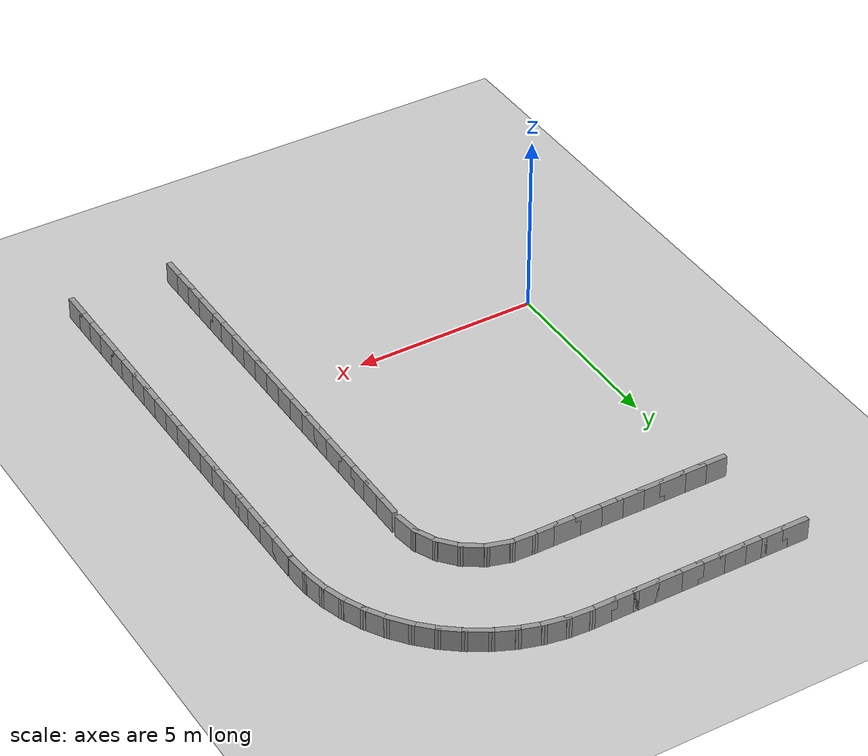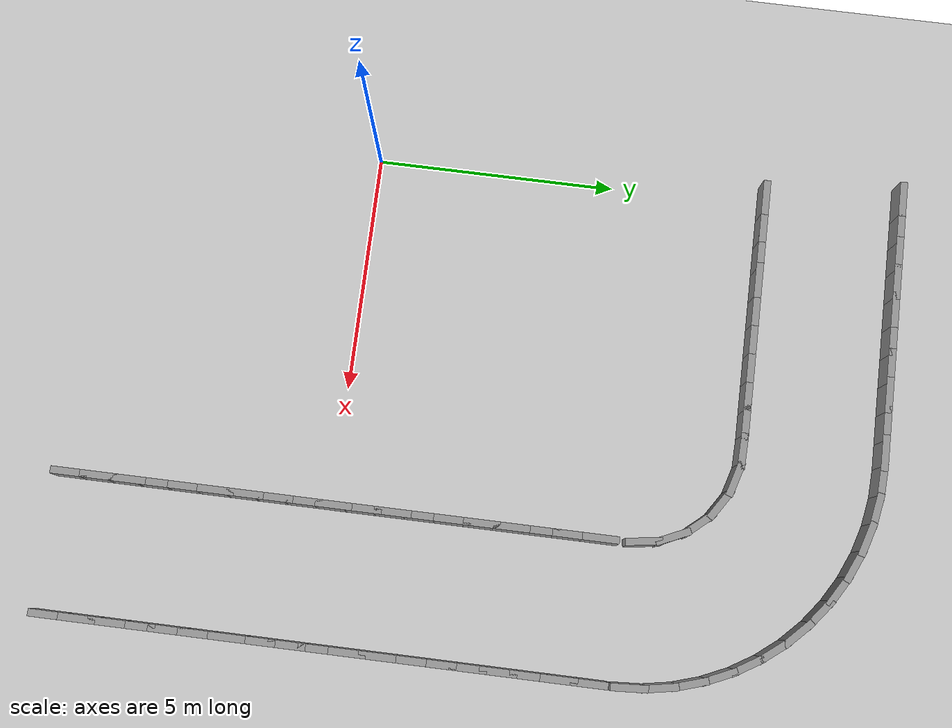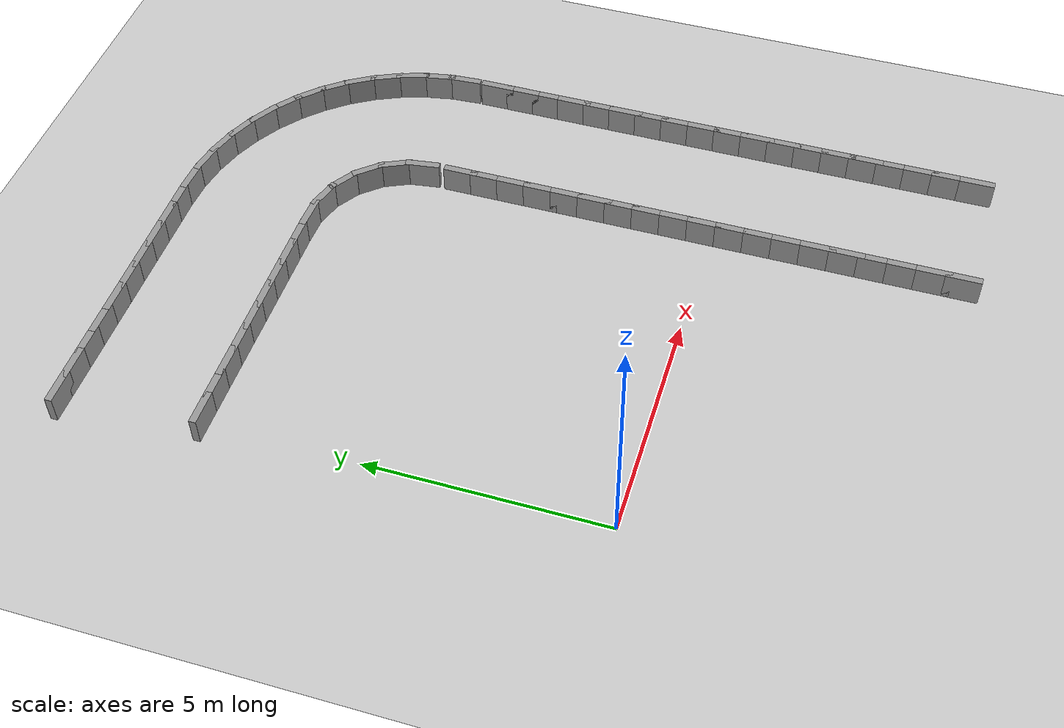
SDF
<sdf version="1.7">
 <world name="default">
  <model name="ground_plane">
   <static>1</static>
   <link name="link">
    <collision name="collision">
     <geometry><plane><normal>0 0 1</normal><size>100 100</size></plane></geometry>
     <surface><friction><ode><mu>100</mu><mu2>50</mu2></ode></friction></surface>
    </collision>
    <visual name="visual">
     <cast_shadows>0</cast_shadows>
     <geometry><plane><normal>0 0 1</normal><size>100 100</size></plane></geometry>
     <material>
      <script><uri>file://media/materials/scripts/gazebo.material</uri><name>Gazebo/Grey</name></script>
     </material>
    </visual>
   </link>
  </model>
  <model name="rand_rrect_00">
   <link name="Wall_0">
    <collision name="Wall_0_Collision">
     <geometry><box><size>0.7480 0.1500 0.6000</size></box></geometry>
     <pose>0 0 0.3000 0 -0 0</pose>
    </collision>
    <visual name="Wall_0_Visual">
     <pose>0 0 0.3000 0 -0 0</pose>
     <geometry><box><size>0.7480 0.1500 0.6000</size></box></geometry>
     <material>
      <script><uri>file://media/materials/scripts/gazebo.material</uri><name>Gazebo/Grey</name></script>
      <ambient>1 1 1 1</ambient>
     </material>
    </visual>
    <pose>7.4411 6.3776 0 0 -0 1.71334</pose>
   </link>
   <link name="Wall_1">
    <collision name="Wall_1_Collision">
     <geometry><box><size>0.7480 0.1500 0.6000</size></box></geometry>
     <pose>0 0 0.3000 0 -0 0</pose>
    </collision>
    <visual name="Wall_1_Visual">
     <pose>0 0 0.3000 0 -0 0</pose>
     <geometry><box><size>0.7480 0.1500 0.6000</size></box></geometry>
     <material>
      <script><uri>file://media/materials/scripts/gazebo.material</uri><name>Gazebo/Grey</name></script>
      <ambient>1 1 1 1</ambient>
     </material>
    </visual>
    <pose>7.2746 6.9457 0 0 -0 1.99840</pose>
   </link>
   <link name="Wall_2">
    <collision name="Wall_2_Collision">
     <geometry><box><size>0.7480 0.1500 0.6000</size></box></geometry>
     <pose>0 0 0.3000 0 -0 0</pose>
    </collision>
    <visual name="Wall_2_Visual">
     <pose>0 0 0.3000 0 -0 0</pose>
     <geometry><box><size>0.7480 0.1500 0.6000</size></box></geometry>
     <material>
      <script><uri>file://media/materials/scripts/gazebo.material</uri><name>Gazebo/Grey</name></script>
      <ambient>1 1 1 1</ambient>
     </material>
    </visual>
    <pose>6.9551 7.4439 0 0 -0 2.28347</pose>
   </link>
   <link name="Wall_3">
    <collision name="Wall_3_Collision">
     <geometry><box><size>0.7480 0.1500 0.6000</size></box></geometry>
     <pose>0 0 0.3000 0 -0 0</pose>
    </collision>
    <visual name="Wall_3_Visual">
     <pose>0 0 0.3000 0 -0 0</pose>
     <geometry><box><size>0.7480 0.1500 0.6000</size></box></geometry>
     <material>
      <script><uri>file://media/materials/scripts/gazebo.material</uri><name>Gazebo/Grey</name></script>
      <ambient>1 1 1 1</ambient>
     </material>
    </visual>
    <pose>6.5084 7.8323 0 0 -0 2.56856</pose>
   </link>
   <link name="Wall_4">
    <collision name="Wall_4_Collision">
     <geometry><box><size>0.7480 0.1500 0.6000</size></box></geometry>
     <pose>0 0 0.3000 0 -0 0</pose>
    </collision>
    <visual name="Wall_4_Visual">
     <pose>0 0 0.3000 0 -0 0</pose>
     <geometry><box><size>0.7480 0.1500 0.6000</size></box></geometry>
     <material>
      <script><uri>file://media/materials/scripts/gazebo.material</uri><name>Gazebo/Grey</name></script>
      <ambient>1 1 1 1</ambient>
     </material>
    </visual>
    <pose>5.9705 8.0793 0 0 -0 2.85362</pose>
   </link>
   <link name="Wall_5">
    <collision name="Wall_5_Collision">
     <geometry><box><size>0.7493 0.1500 0.6000</size></box></geometry>
     <pose>0 0 0.3000 0 -0 0</pose>
    </collision>
    <visual name="Wall_5_Visual">
     <pose>0 0 0.3000 0 -0 0</pose>
     <geometry><box><size>0.7493 0.1500 0.6000</size></box></geometry>
     <material>
      <script><uri>file://media/materials/scripts/gazebo.material</uri><name>Gazebo/Grey</name></script>
      <ambient>1 1 1 1</ambient>
     </material>
    </visual>
    <pose>5.3844 8.1753 0 0 -0 3.10450</pose>
   </link>
   <link name="Wall_6">
    <collision name="Wall_6_Collision">
     <geometry><box><size>0.7500 0.1500 0.6000</size></box></geometry>
     <pose>0 0 0.3000 0 -0 0</pose>
    </collision>
    <visual name="Wall_6_Visual">
     <pose>0 0 0.3000 0 -0 0</pose>
     <geometry><box><size>0.7500 0.1500 0.6000</size></box></geometry>
     <material>
      <script><uri>file://media/materials/scripts/gazebo.material</uri><name>Gazebo/Grey</name></script>
      <ambient>1 1 1 1</ambient>
     </material>
    </visual>
    <pose>4.7849 8.1864 0 0 -0 3.14159</pose>
   </link>
   <link name="Wall_7">
    <collision name="Wall_7_Collision">
     <geometry><box><size>0.7500 0.1500 0.6000</size></box></geometry>
     <pose>0 0 0.3000 0 -0 0</pose>
    </collision>
    <visual name="Wall_7_Visual">
     <pose>0 0 0.3000 0 -0 0</pose>
     <geometry><box><size>0.7500 0.1500 0.6000</size></box></geometry>
     <material>
      <script><uri>file://media/materials/scripts/gazebo.material</uri><name>Gazebo/Grey</name></script>
      <ambient>1 1 1 1</ambient>
     </material>
    </visual>
    <pose>4.1849 8.1864 0 0 -0 3.14159</pose>
   </link>
   <link name="Wall_8">
    <collision name="Wall_8_Collision">
     <geometry><box><size>0.7500 0.1500 0.6000</size></box></geometry>
     <pose>0 0 0.3000 0 -0 0</pose>
    </collision>
    <visual name="Wall_8_Visual">
     <pose>0 0 0.3000 0 -0 0</pose>
     <geometry><box><size>0.7500 0.1500 0.6000</size></box></geometry>
     <material>
      <script><uri>file://media/materials/scripts/gazebo.material</uri><name>Gazebo/Grey</name></script>
      <ambient>1 1 1 1</ambient>
     </material>
    </visual>
    <pose>3.5849 8.1864 0 0 -0 3.14159</pose>
   </link>
   <link name="Wall_9">
    <collision name="Wall_9_Collision">
     <geometry><box><size>0.7500 0.1500 0.6000</size></box></geometry>
     <pose>0 0 0.3000 0 -0 0</pose>
    </collision>
    <visual name="Wall_9_Visual">
     <pose>0 0 0.3000 0 -0 0</pose>
     <geometry><box><size>0.7500 0.1500 0.6000</size></box></geometry>
     <material>
      <script><uri>file://media/materials/scripts/gazebo.material</uri><name>Gazebo/Grey</name></script>
      <ambient>1 1 1 1</ambient>
     </material>
    </visual>
    <pose>2.9849 8.1864 0 0 -0 3.14159</pose>
   </link>
   <link name="Wall_10">
    <collision name="Wall_10_Collision">
     <geometry><box><size>0.7500 0.1500 0.6000</size></box></geometry>
     <pose>0 0 0.3000 0 -0 0</pose>
    </collision>
    <visual name="Wall_10_Visual">
     <pose>0 0 0.3000 0 -0 0</pose>
     <geometry><box><size>0.7500 0.1500 0.6000</size></box></geometry>
     <material>
      <script><uri>file://media/materials/scripts/gazebo.material</uri><name>Gazebo/Grey</name></script>
      <ambient>1 1 1 1</ambient>
     </material>
    </visual>
    <pose>2.3849 8.1864 0 0 -0 3.14159</pose>
   </link>
   <link name="Wall_11">
    <collision name="Wall_11_Collision">
     <geometry><box><size>0.7500 0.1500 0.6000</size></box></geometry>
     <pose>0 0 0.3000 0 -0 0</pose>
    </collision>
    <visual name="Wall_11_Visual">
     <pose>0 0 0.3000 0 -0 0</pose>
     <geometry><box><size>0.7500 0.1500 0.6000</size></box></geometry>
     <material>
      <script><uri>file://media/materials/scripts/gazebo.material</uri><name>Gazebo/Grey</name></script>
      <ambient>1 1 1 1</ambient>
     </material>
    </visual>
    <pose>1.7849 8.1864 0 0 -0 3.14159</pose>
   </link>
   <link name="Wall_12">
    <collision name="Wall_12_Collision">
     <geometry><box><size>0.7500 0.1500 0.6000</size></box></geometry>
     <pose>0 0 0.3000 0 -0 0</pose>
    </collision>
    <visual name="Wall_12_Visual">
     <pose>0 0 0.3000 0 -0 0</pose>
     <geometry><box><size>0.7500 0.1500 0.6000</size></box></geometry>
     <material>
      <script><uri>file://media/materials/scripts/gazebo.material</uri><name>Gazebo/Grey</name></script>
      <ambient>1 1 1 1</ambient>
     </material>
    </visual>
    <pose>1.1849 8.1864 0 0 -0 3.14159</pose>
   </link>
   <link name="Wall_13">
    <collision name="Wall_13_Collision">
     <geometry><box><size>0.7500 0.1500 0.6000</size></box></geometry>
     <pose>0 0 0.3000 0 -0 0</pose>
    </collision>
    <visual name="Wall_13_Visual">
     <pose>0 0 0.3000 0 -0 0</pose>
     <geometry><box><size>0.7500 0.1500 0.6000</size></box></geometry>
     <material>
      <script><uri>file://media/materials/scripts/gazebo.material</uri><name>Gazebo/Grey</name></script>
      <ambient>1 1 1 1</ambient>
     </material>
    </visual>
    <pose>0.5849 8.1864 0 0 -0 3.14159</pose>
   </link>
   <link name="Wall_14">
    <collision name="Wall_14_Collision">
     <geometry><box><size>0.7500 0.1500 0.6000</size></box></geometry>
     <pose>0 0 0.3000 0 -0 0</pose>
    </collision>
    <visual name="Wall_14_Visual">
     <pose>0 0 0.3000 0 -0 0</pose>
     <geometry><box><size>0.7500 0.1500 0.6000</size></box></geometry>
     <material>
      <script><uri>file://media/materials/scripts/gazebo.material</uri><name>Gazebo/Grey</name></script>
      <ambient>1 1 1 1</ambient>
     </material>
    </visual>
    <pose>-0.0151 8.1864 0 0 -0 3.14159</pose>
   </link>
   <link name="Wall_79">
    <collision name="Wall_79_Collision">
     <geometry><box><size>0.7500 0.1500 0.6000</size></box></geometry>
     <pose>0 0 0.3000 0 -0 0</pose>
    </collision>
    <visual name="Wall_79_Visual">
     <pose>0 0 0.3000 0 -0 0</pose>
     <geometry><box><size>0.7500 0.1500 0.6000</size></box></geometry>
     <material>
      <script><uri>file://media/materials/scripts/gazebo.material</uri><name>Gazebo/Grey</name></script>
      <ambient>1 1 1 1</ambient>
     </material>
    </visual>
    <pose>7.4835 -5.2847 0 0 -0 1.57080</pose>
   </link>
   <link name="Wall_80">
    <collision name="Wall_80_Collision">
     <geometry><box><size>0.7500 0.1500 0.6000</size></box></geometry>
     <pose>0 0 0.3000 0 -0 0</pose>
    </collision>
    <visual name="Wall_80_Visual">
     <pose>0 0 0.3000 0 -0 0</pose>
     <geometry><box><size>0.7500 0.1500 0.6000</size></box></geometry>
     <material>
      <script><uri>file://media/materials/scripts/gazebo.material</uri><name>Gazebo/Grey</name></script>
      <ambient>1 1 1 1</ambient>
     </material>
    </visual>
    <pose>7.4835 -4.6847 0 0 -0 1.57080</pose>
   </link>
   <link name="Wall_81">
    <collision name="Wall_81_Collision">
     <geometry><box><size>0.7500 0.1500 0.6000</size></box></geometry>
     <pose>0 0 0.3000 0 -0 0</pose>
    </collision>
    <visual name="Wall_81_Visual">
     <pose>0 0 0.3000 0 -0 0</pose>
     <geometry><box><size>0.7500 0.1500 0.6000</size></box></geometry>
     <material>
      <script><uri>file://media/materials/scripts/gazebo.material</uri><name>Gazebo/Grey</name></script>
      <ambient>1 1 1 1</ambient>
     </material>
    </visual>
    <pose>7.4835 -4.0847 0 0 -0 1.57080</pose>
   </link>
   <link name="Wall_82">
    <collision name="Wall_82_Collision">
     <geometry><box><size>0.7500 0.1500 0.6000</size></box></geometry>
     <pose>0 0 0.3000 0 -0 0</pose>
    </collision>
    <visual name="Wall_82_Visual">
     <pose>0 0 0.3000 0 -0 0</pose>
     <geometry><box><size>0.7500 0.1500 0.6000</size></box></geometry>
     <material>
      <script><uri>file://media/materials/scripts/gazebo.material</uri><name>Gazebo/Grey</name></script>
      <ambient>1 1 1 1</ambient>
     </material>
    </visual>
    <pose>7.4835 -3.4847 0 0 -0 1.57080</pose>
   </link>
   <link name="Wall_83">
    <collision name="Wall_83_Collision">
     <geometry><box><size>0.7500 0.1500 0.6000</size></box></geometry>
     <pose>0 0 0.3000 0 -0 0</pose>
    </collision>
    <visual name="Wall_83_Visual">
     <pose>0 0 0.3000 0 -0 0</pose>
     <geometry><box><size>0.7500 0.1500 0.6000</size></box></geometry>
     <material>
      <script><uri>file://media/materials/scripts/gazebo.material</uri><name>Gazebo/Grey</name></script>
      <ambient>1 1 1 1</ambient>
     </material>
    </visual>
    <pose>7.4835 -2.8847 0 0 -0 1.57080</pose>
   </link>
   <link name="Wall_84">
    <collision name="Wall_84_Collision">
     <geometry><box><size>0.7500 0.1500 0.6000</size></box></geometry>
     <pose>0 0 0.3000 0 -0 0</pose>
    </collision>
    <visual name="Wall_84_Visual">
     <pose>0 0 0.3000 0 -0 0</pose>
     <geometry><box><size>0.7500 0.1500 0.6000</size></box></geometry>
     <material>
      <script><uri>file://media/materials/scripts/gazebo.material</uri><name>Gazebo/Grey</name></script>
      <ambient>1 1 1 1</ambient>
     </material>
    </visual>
    <pose>7.4835 -2.2847 0 0 -0 1.57080</pose>
   </link>
   <link name="Wall_85">
    <collision name="Wall_85_Collision">
     <geometry><box><size>0.7500 0.1500 0.6000</size></box></geometry>
     <pose>0 0 0.3000 0 -0 0</pose>
    </collision>
    <visual name="Wall_85_Visual">
     <pose>0 0 0.3000 0 -0 0</pose>
     <geometry><box><size>0.7500 0.1500 0.6000</size></box></geometry>
     <material>
      <script><uri>file://media/materials/scripts/gazebo.material</uri><name>Gazebo/Grey</name></script>
      <ambient>1 1 1 1</ambient>
     </material>
    </visual>
    <pose>7.4835 -1.6847 0 0 -0 1.57080</pose>
   </link>
   <link name="Wall_86">
    <collision name="Wall_86_Collision">
     <geometry><box><size>0.7500 0.1500 0.6000</size></box></geometry>
     <pose>0 0 0.3000 0 -0 0</pose>
    </collision>
    <visual name="Wall_86_Visual">
     <pose>0 0 0.3000 0 -0 0</pose>
     <geometry><box><size>0.7500 0.1500 0.6000</size></box></geometry>
     <material>
      <script><uri>file://media/materials/scripts/gazebo.material</uri><name>Gazebo/Grey</name></script>
      <ambient>1 1 1 1</ambient>
     </material>
    </visual>
    <pose>7.4835 -1.0847 0 0 -0 1.57080</pose>
   </link>
   <link name="Wall_87">
    <collision name="Wall_87_Collision">
     <geometry><box><size>0.7500 0.1500 0.6000</size></box></geometry>
     <pose>0 0 0.3000 0 -0 0</pose>
    </collision>
    <visual name="Wall_87_Visual">
     <pose>0 0 0.3000 0 -0 0</pose>
     <geometry><box><size>0.7500 0.1500 0.6000</size></box></geometry>
     <material>
      <script><uri>file://media/materials/scripts/gazebo.material</uri><name>Gazebo/Grey</name></script>
      <ambient>1 1 1 1</ambient>
     </material>
    </visual>
    <pose>7.4835 -0.4847 0 0 -0 1.57080</pose>
   </link>
   <link name="Wall_88">
    <collision name="Wall_88_Collision">
     <geometry><box><size>0.7500 0.1500 0.6000</size></box></geometry>
     <pose>0 0 0.3000 0 -0 0</pose>
    </collision>
    <visual name="Wall_88_Visual">
     <pose>0 0 0.3000 0 -0 0</pose>
     <geometry><box><size>0.7500 0.1500 0.6000</size></box></geometry>
     <material>
      <script><uri>file://media/materials/scripts/gazebo.material</uri><name>Gazebo/Grey</name></script>
      <ambient>1 1 1 1</ambient>
     </material>
    </visual>
    <pose>7.4835 0.1153 0 0 -0 1.57080</pose>
   </link>
   <link name="Wall_89">
    <collision name="Wall_89_Collision">
     <geometry><box><size>0.7500 0.1500 0.6000</size></box></geometry>
     <pose>0 0 0.3000 0 -0 0</pose>
    </collision>
    <visual name="Wall_89_Visual">
     <pose>0 0 0.3000 0 -0 0</pose>
     <geometry><box><size>0.7500 0.1500 0.6000</size></box></geometry>
     <material>
      <script><uri>file://media/materials/scripts/gazebo.material</uri><name>Gazebo/Grey</name></script>
      <ambient>1 1 1 1</ambient>
     </material>
    </visual>
    <pose>7.4835 0.7153 0 0 -0 1.57080</pose>
   </link>
   <link name="Wall_90">
    <collision name="Wall_90_Collision">
     <geometry><box><size>0.7500 0.1500 0.6000</size></box></geometry>
     <pose>0 0 0.3000 0 -0 0</pose>
    </collision>
    <visual name="Wall_90_Visual">
     <pose>0 0 0.3000 0 -0 0</pose>
     <geometry><box><size>0.7500 0.1500 0.6000</size></box></geometry>
     <material>
      <script><uri>file://media/materials/scripts/gazebo.material</uri><name>Gazebo/Grey</name></script>
      <ambient>1 1 1 1</ambient>
     </material>
    </visual>
    <pose>7.4835 1.3153 0 0 -0 1.57080</pose>
   </link>
   <link name="Wall_91">
    <collision name="Wall_91_Collision">
     <geometry><box><size>0.7500 0.1500 0.6000</size></box></geometry>
     <pose>0 0 0.3000 0 -0 0</pose>
    </collision>
    <visual name="Wall_91_Visual">
     <pose>0 0 0.3000 0 -0 0</pose>
     <geometry><box><size>0.7500 0.1500 0.6000</size></box></geometry>
     <material>
      <script><uri>file://media/materials/scripts/gazebo.material</uri><name>Gazebo/Grey</name></script>
      <ambient>1 1 1 1</ambient>
     </material>
    </visual>
    <pose>7.4835 1.9153 0 0 -0 1.57080</pose>
   </link>
   <link name="Wall_92">
    <collision name="Wall_92_Collision">
     <geometry><box><size>0.7500 0.1500 0.6000</size></box></geometry>
     <pose>0 0 0.3000 0 -0 0</pose>
    </collision>
    <visual name="Wall_92_Visual">
     <pose>0 0 0.3000 0 -0 0</pose>
     <geometry><box><size>0.7500 0.1500 0.6000</size></box></geometry>
     <material>
      <script><uri>file://media/materials/scripts/gazebo.material</uri><name>Gazebo/Grey</name></script>
      <ambient>1 1 1 1</ambient>
     </material>
    </visual>
    <pose>7.4835 2.5153 0 0 -0 1.57080</pose>
   </link>
   <link name="Wall_93">
    <collision name="Wall_93_Collision">
     <geometry><box><size>0.7500 0.1500 0.6000</size></box></geometry>
     <pose>0 0 0.3000 0 -0 0</pose>
    </collision>
    <visual name="Wall_93_Visual">
     <pose>0 0 0.3000 0 -0 0</pose>
     <geometry><box><size>0.7500 0.1500 0.6000</size></box></geometry>
     <material>
      <script><uri>file://media/materials/scripts/gazebo.material</uri><name>Gazebo/Grey</name></script>
      <ambient>1 1 1 1</ambient>
     </material>
    </visual>
    <pose>7.4835 3.1153 0 0 -0 1.57080</pose>
   </link>
   <link name="Wall_94">
    <collision name="Wall_94_Collision">
     <geometry><box><size>0.7500 0.1500 0.6000</size></box></geometry>
     <pose>0 0 0.3000 0 -0 0</pose>
    </collision>
    <visual name="Wall_94_Visual">
     <pose>0 0 0.3000 0 -0 0</pose>
     <geometry><box><size>0.7500 0.1500 0.6000</size></box></geometry>
     <material>
      <script><uri>file://media/materials/scripts/gazebo.material</uri><name>Gazebo/Grey</name></script>
      <ambient>1 1 1 1</ambient>
     </material>
    </visual>
    <pose>7.4835 3.7153 0 0 -0 1.57080</pose>
   </link>
   <link name="Wall_95">
    <collision name="Wall_95_Collision">
     <geometry><box><size>0.7500 0.1500 0.6000</size></box></geometry>
     <pose>0 0 0.3000 0 -0 0</pose>
    </collision>
    <visual name="Wall_95_Visual">
     <pose>0 0 0.3000 0 -0 0</pose>
     <geometry><box><size>0.7500 0.1500 0.6000</size></box></geometry>
     <material>
      <script><uri>file://media/materials/scripts/gazebo.material</uri><name>Gazebo/Grey</name></script>
      <ambient>1 1 1 1</ambient>
     </material>
    </visual>
    <pose>7.4835 4.3153 0 0 -0 1.57080</pose>
   </link>
   <link name="Wall_96">
    <collision name="Wall_96_Collision">
     <geometry><box><size>0.7500 0.1500 0.6000</size></box></geometry>
     <pose>0 0 0.3000 0 -0 0</pose>
    </collision>
    <visual name="Wall_96_Visual">
     <pose>0 0 0.3000 0 -0 0</pose>
     <geometry><box><size>0.7500 0.1500 0.6000</size></box></geometry>
     <material>
      <script><uri>file://media/materials/scripts/gazebo.material</uri><name>Gazebo/Grey</name></script>
      <ambient>1 1 1 1</ambient>
     </material>
    </visual>
    <pose>7.4835 4.9153 0 0 -0 1.57080</pose>
   </link>
   <link name="Wall_97">
    <collision name="Wall_97_Collision">
     <geometry><box><size>0.7500 0.1500 0.6000</size></box></geometry>
     <pose>0 0 0.3000 0 -0 0</pose>
    </collision>
    <visual name="Wall_97_Visual">
     <pose>0 0 0.3000 0 -0 0</pose>
     <geometry><box><size>0.7500 0.1500 0.6000</size></box></geometry>
     <material>
      <script><uri>file://media/materials/scripts/gazebo.material</uri><name>Gazebo/Grey</name></script>
      <ambient>1 1 1 1</ambient>
     </material>
    </visual>
    <pose>7.4835 5.5153 0 0 -0 1.57080</pose>
   </link>
   <link name="Wall_98">
    <collision name="Wall_98_Collision">
     <geometry><box><size>0.7496 0.1500 0.6000</size></box></geometry>
     <pose>0 0 0.3000 0 -0 0</pose>
    </collision>
    <visual name="Wall_98_Visual">
     <pose>0 0 0.3000 0 -0 0</pose>
     <geometry><box><size>0.7496 0.1500 0.6000</size></box></geometry>
     <material>
      <script><uri>file://media/materials/scripts/gazebo.material</uri><name>Gazebo/Grey</name></script>
      <ambient>1 1 1 1</ambient>
     </material>
    </visual>
    <pose>10.3179 6.3810 0 0 -0 1.63132</pose>
   </link>
   <link name="Wall_99">
    <collision name="Wall_99_Collision">
     <geometry><box><size>0.7496 0.1500 0.6000</size></box></geometry>
     <pose>0 0 0.3000 0 -0 0</pose>
    </collision>
    <visual name="Wall_99_Visual">
     <pose>0 0 0.3000 0 -0 0</pose>
     <geometry><box><size>0.7496 0.1500 0.6000</size></box></geometry>
     <material>
      <script><uri>file://media/materials/scripts/gazebo.material</uri><name>Gazebo/Grey</name></script>
      <ambient>1 1 1 1</ambient>
     </material>
    </visual>
    <pose>10.2456 6.9751 0 0 -0 1.75236</pose>
   </link>
   <link name="Wall_100">
    <collision name="Wall_100_Collision">
     <geometry><box><size>0.7496 0.1500 0.6000</size></box></geometry>
     <pose>0 0 0.3000 0 -0 0</pose>
    </collision>
    <visual name="Wall_100_Visual">
     <pose>0 0 0.3000 0 -0 0</pose>
     <geometry><box><size>0.7496 0.1500 0.6000</size></box></geometry>
     <material>
      <script><uri>file://media/materials/scripts/gazebo.material</uri><name>Gazebo/Grey</name></script>
      <ambient>1 1 1 1</ambient>
     </material>
    </visual>
    <pose>10.1021 7.5562 0 0 -0 1.87339</pose>
   </link>
   <link name="Wall_101">
    <collision name="Wall_101_Collision">
     <geometry><box><size>0.7496 0.1500 0.6000</size></box></geometry>
     <pose>0 0 0.3000 0 -0 0</pose>
    </collision>
    <visual name="Wall_101_Visual">
     <pose>0 0 0.3000 0 -0 0</pose>
     <geometry><box><size>0.7496 0.1500 0.6000</size></box></geometry>
     <material>
      <script><uri>file://media/materials/scripts/gazebo.material</uri><name>Gazebo/Grey</name></script>
      <ambient>1 1 1 1</ambient>
     </material>
    </visual>
    <pose>9.8895 8.1157 0 0 -0 1.99443</pose>
   </link>
   <link name="Wall_102">
    <collision name="Wall_102_Collision">
     <geometry><box><size>0.7496 0.1500 0.6000</size></box></geometry>
     <pose>0 0 0.3000 0 -0 0</pose>
    </collision>
    <visual name="Wall_102_Visual">
     <pose>0 0 0.3000 0 -0 0</pose>
     <geometry><box><size>0.7496 0.1500 0.6000</size></box></geometry>
     <material>
      <script><uri>file://media/materials/scripts/gazebo.material</uri><name>Gazebo/Grey</name></script>
      <ambient>1 1 1 1</ambient>
     </material>
    </visual>
    <pose>9.6109 8.6455 0 0 -0 2.11546</pose>
   </link>
   <link name="Wall_103">
    <collision name="Wall_103_Collision">
     <geometry><box><size>0.7496 0.1500 0.6000</size></box></geometry>
     <pose>0 0 0.3000 0 -0 0</pose>
    </collision>
    <visual name="Wall_103_Visual">
     <pose>0 0 0.3000 0 -0 0</pose>
     <geometry><box><size>0.7496 0.1500 0.6000</size></box></geometry>
     <material>
      <script><uri>file://media/materials/scripts/gazebo.material</uri><name>Gazebo/Grey</name></script>
      <ambient>1 1 1 1</ambient>
     </material>
    </visual>
    <pose>9.2704 9.1377 0 0 -0 2.23649</pose>
   </link>
   <link name="Wall_104">
    <collision name="Wall_104_Collision">
     <geometry><box><size>0.7496 0.1500 0.6000</size></box></geometry>
     <pose>0 0 0.3000 0 -0 0</pose>
    </collision>
    <visual name="Wall_104_Visual">
     <pose>0 0 0.3000 0 -0 0</pose>
     <geometry><box><size>0.7496 0.1500 0.6000</size></box></geometry>
     <material>
      <script><uri>file://media/materials/scripts/gazebo.material</uri><name>Gazebo/Grey</name></script>
      <ambient>1 1 1 1</ambient>
     </material>
    </visual>
    <pose>8.8730 9.5852 0 0 -0 2.35753</pose>
   </link>
   <link name="Wall_105">
    <collision name="Wall_105_Collision">
     <geometry><box><size>0.7496 0.1500 0.6000</size></box></geometry>
     <pose>0 0 0.3000 0 -0 0</pose>
    </collision>
    <visual name="Wall_105_Visual">
     <pose>0 0 0.3000 0 -0 0</pose>
     <geometry><box><size>0.7496 0.1500 0.6000</size></box></geometry>
     <material>
      <script><uri>file://media/materials/scripts/gazebo.material</uri><name>Gazebo/Grey</name></script>
      <ambient>1 1 1 1</ambient>
     </material>
    </visual>
    <pose>8.4244 9.9815 0 0 -0 2.47856</pose>
   </link>
   <link name="Wall_106">
    <collision name="Wall_106_Collision">
     <geometry><box><size>0.7496 0.1500 0.6000</size></box></geometry>
     <pose>0 0 0.3000 0 -0 0</pose>
    </collision>
    <visual name="Wall_106_Visual">
     <pose>0 0 0.3000 0 -0 0</pose>
     <geometry><box><size>0.7496 0.1500 0.6000</size></box></geometry>
     <material>
      <script><uri>file://media/materials/scripts/gazebo.material</uri><name>Gazebo/Grey</name></script>
      <ambient>1 1 1 1</ambient>
     </material>
    </visual>
    <pose>7.9312 10.3207 0 0 -0 2.59960</pose>
   </link>
   <link name="Wall_107">
    <collision name="Wall_107_Collision">
     <geometry><box><size>0.7496 0.1500 0.6000</size></box></geometry>
     <pose>0 0 0.3000 0 -0 0</pose>
    </collision>
    <visual name="Wall_107_Visual">
     <pose>0 0 0.3000 0 -0 0</pose>
     <geometry><box><size>0.7496 0.1500 0.6000</size></box></geometry>
     <material>
      <script><uri>file://media/materials/scripts/gazebo.material</uri><name>Gazebo/Grey</name></script>
      <ambient>1 1 1 1</ambient>
     </material>
    </visual>
    <pose>7.4007 10.5978 0 0 -0 2.72065</pose>
   </link>
   <link name="Wall_108">
    <collision name="Wall_108_Collision">
     <geometry><box><size>0.7496 0.1500 0.6000</size></box></geometry>
     <pose>0 0 0.3000 0 -0 0</pose>
    </collision>
    <visual name="Wall_108_Visual">
     <pose>0 0 0.3000 0 -0 0</pose>
     <geometry><box><size>0.7496 0.1500 0.6000</size></box></geometry>
     <material>
      <script><uri>file://media/materials/scripts/gazebo.material</uri><name>Gazebo/Grey</name></script>
      <ambient>1 1 1 1</ambient>
     </material>
    </visual>
    <pose>6.8407 10.8089 0 0 -0 2.84168</pose>
   </link>
   <link name="Wall_109">
    <collision name="Wall_109_Collision">
     <geometry><box><size>0.7496 0.1500 0.6000</size></box></geometry>
     <pose>0 0 0.3000 0 -0 0</pose>
    </collision>
    <visual name="Wall_109_Visual">
     <pose>0 0 0.3000 0 -0 0</pose>
     <geometry><box><size>0.7496 0.1500 0.6000</size></box></geometry>
     <material>
      <script><uri>file://media/materials/scripts/gazebo.material</uri><name>Gazebo/Grey</name></script>
      <ambient>1 1 1 1</ambient>
     </material>
    </visual>
    <pose>6.2592 10.9509 0 0 -0 2.96272</pose>
   </link>
   <link name="Wall_110">
    <collision name="Wall_110_Collision">
     <geometry><box><size>0.7496 0.1500 0.6000</size></box></geometry>
     <pose>0 0 0.3000 0 -0 0</pose>
    </collision>
    <visual name="Wall_110_Visual">
     <pose>0 0 0.3000 0 -0 0</pose>
     <geometry><box><size>0.7496 0.1500 0.6000</size></box></geometry>
     <material>
      <script><uri>file://media/materials/scripts/gazebo.material</uri><name>Gazebo/Grey</name></script>
      <ambient>1 1 1 1</ambient>
     </material>
    </visual>
    <pose>5.6649 11.0215 0 0 -0 3.08370</pose>
   </link>
   <link name="Wall_111">
    <collision name="Wall_111_Collision">
     <geometry><box><size>0.7500 0.1500 0.6000</size></box></geometry>
     <pose>0 0 0.3000 0 -0 0</pose>
    </collision>
    <visual name="Wall_111_Visual">
     <pose>0 0 0.3000 0 -0 0</pose>
     <geometry><box><size>0.7500 0.1500 0.6000</size></box></geometry>
     <material>
      <script><uri>file://media/materials/scripts/gazebo.material</uri><name>Gazebo/Grey</name></script>
      <ambient>1 1 1 1</ambient>
     </material>
    </visual>
    <pose>5.0655 11.0389 0 0 -0 3.14159</pose>
   </link>
   <link name="Wall_112">
    <collision name="Wall_112_Collision">
     <geometry><box><size>0.7500 0.1500 0.6000</size></box></geometry>
     <pose>0 0 0.3000 0 -0 0</pose>
    </collision>
    <visual name="Wall_112_Visual">
     <pose>0 0 0.3000 0 -0 0</pose>
     <geometry><box><size>0.7500 0.1500 0.6000</size></box></geometry>
     <material>
      <script><uri>file://media/materials/scripts/gazebo.material</uri><name>Gazebo/Grey</name></script>
      <ambient>1 1 1 1</ambient>
     </material>
    </visual>
    <pose>4.4655 11.0389 0 0 -0 3.14159</pose>
   </link>
   <link name="Wall_113">
    <collision name="Wall_113_Collision">
     <geometry><box><size>0.7500 0.1500 0.6000</size></box></geometry>
     <pose>0 0 0.3000 0 -0 0</pose>
    </collision>
    <visual name="Wall_113_Visual">
     <pose>0 0 0.3000 0 -0 0</pose>
     <geometry><box><size>0.7500 0.1500 0.6000</size></box></geometry>
     <material>
      <script><uri>file://media/materials/scripts/gazebo.material</uri><name>Gazebo/Grey</name></script>
      <ambient>1 1 1 1</ambient>
     </material>
    </visual>
    <pose>3.8655 11.0389 0 0 -0 3.14159</pose>
   </link>
   <link name="Wall_114">
    <collision name="Wall_114_Collision">
     <geometry><box><size>0.7500 0.1500 0.6000</size></box></geometry>
     <pose>0 0 0.3000 0 -0 0</pose>
    </collision>
    <visual name="Wall_114_Visual">
     <pose>0 0 0.3000 0 -0 0</pose>
     <geometry><box><size>0.7500 0.1500 0.6000</size></box></geometry>
     <material>
      <script><uri>file://media/materials/scripts/gazebo.material</uri><name>Gazebo/Grey</name></script>
      <ambient>1 1 1 1</ambient>
     </material>
    </visual>
    <pose>3.2655 11.0389 0 0 -0 3.14159</pose>
   </link>
   <link name="Wall_115">
    <collision name="Wall_115_Collision">
     <geometry><box><size>0.7500 0.1500 0.6000</size></box></geometry>
     <pose>0 0 0.3000 0 -0 0</pose>
    </collision>
    <visual name="Wall_115_Visual">
     <pose>0 0 0.3000 0 -0 0</pose>
     <geometry><box><size>0.7500 0.1500 0.6000</size></box></geometry>
     <material>
      <script><uri>file://media/materials/scripts/gazebo.material</uri><name>Gazebo/Grey</name></script>
      <ambient>1 1 1 1</ambient>
     </material>
    </visual>
    <pose>2.6655 11.0389 0 0 -0 3.14159</pose>
   </link>
   <link name="Wall_116">
    <collision name="Wall_116_Collision">
     <geometry><box><size>0.7500 0.1500 0.6000</size></box></geometry>
     <pose>0 0 0.3000 0 -0 0</pose>
    </collision>
    <visual name="Wall_116_Visual">
     <pose>0 0 0.3000 0 -0 0</pose>
     <geometry><box><size>0.7500 0.1500 0.6000</size></box></geometry>
     <material>
      <script><uri>file://media/materials/scripts/gazebo.material</uri><name>Gazebo/Grey</name></script>
      <ambient>1 1 1 1</ambient>
     </material>
    </visual>
    <pose>2.0655 11.0389 0 0 -0 3.14159</pose>
   </link>
   <link name="Wall_117">
    <collision name="Wall_117_Collision">
     <geometry><box><size>0.7500 0.1500 0.6000</size></box></geometry>
     <pose>0 0 0.3000 0 -0 0</pose>
    </collision>
    <visual name="Wall_117_Visual">
     <pose>0 0 0.3000 0 -0 0</pose>
     <geometry><box><size>0.7500 0.1500 0.6000</size></box></geometry>
     <material>
      <script><uri>file://media/materials/scripts/gazebo.material</uri><name>Gazebo/Grey</name></script>
      <ambient>1 1 1 1</ambient>
     </material>
    </visual>
    <pose>1.4655 11.0389 0 0 -0 3.14159</pose>
   </link>
   <link name="Wall_118">
    <collision name="Wall_118_Collision">
     <geometry><box><size>0.7500 0.1500 0.6000</size></box></geometry>
     <pose>0 0 0.3000 0 -0 0</pose>
    </collision>
    <visual name="Wall_118_Visual">
     <pose>0 0 0.3000 0 -0 0</pose>
     <geometry><box><size>0.7500 0.1500 0.6000</size></box></geometry>
     <material>
      <script><uri>file://media/materials/scripts/gazebo.material</uri><name>Gazebo/Grey</name></script>
      <ambient>1 1 1 1</ambient>
     </material>
    </visual>
    <pose>0.8655 11.0389 0 0 -0 3.14159</pose>
   </link>
   <link name="Wall_119">
    <collision name="Wall_119_Collision">
     <geometry><box><size>0.7500 0.1500 0.6000</size></box></geometry>
     <pose>0 0 0.3000 0 -0 0</pose>
    </collision>
    <visual name="Wall_119_Visual">
     <pose>0 0 0.3000 0 -0 0</pose>
     <geometry><box><size>0.7500 0.1500 0.6000</size></box></geometry>
     <material>
      <script><uri>file://media/materials/scripts/gazebo.material</uri><name>Gazebo/Grey</name></script>
      <ambient>1 1 1 1</ambient>
     </material>
    </visual>
    <pose>0.2655 11.0389 0 0 -0 3.14159</pose>
   </link>
   <link name="Wall_120">
    <collision name="Wall_120_Collision">
     <geometry><box><size>0.7500 0.1500 0.6000</size></box></geometry>
     <pose>0 0 0.3000 0 -0 0</pose>
    </collision>
    <visual name="Wall_120_Visual">
     <pose>0 0 0.3000 0 -0 0</pose>
     <geometry><box><size>0.7500 0.1500 0.6000</size></box></geometry>
     <material>
      <script><uri>file://media/materials/scripts/gazebo.material</uri><name>Gazebo/Grey</name></script>
      <ambient>1 1 1 1</ambient>
     </material>
    </visual>
    <pose>-0.3345 11.0389 0 0 -0 3.14159</pose>
   </link>
   <link name="Wall_207">
    <collision name="Wall_207_Collision">
     <geometry><box><size>0.7500 0.1500 0.6000</size></box></geometry>
     <pose>0 0 0.3000 0 -0 0</pose>
    </collision>
    <visual name="Wall_207_Visual">
     <pose>0 0 0.3000 0 -0 0</pose>
     <geometry><box><size>0.7500 0.1500 0.6000</size></box></geometry>
     <material>
      <script><uri>file://media/materials/scripts/gazebo.material</uri><name>Gazebo/Grey</name></script>
      <ambient>1 1 1 1</ambient>
     </material>
    </visual>
    <pose>10.3360 -5.2073 0 0 -0 1.57080</pose>
   </link>
   <link name="Wall_208">
    <collision name="Wall_208_Collision">
     <geometry><box><size>0.7500 0.1500 0.6000</size></box></geometry>
     <pose>0 0 0.3000 0 -0 0</pose>
    </collision>
    <visual name="Wall_208_Visual">
     <pose>0 0 0.3000 0 -0 0</pose>
     <geometry><box><size>0.7500 0.1500 0.6000</size></box></geometry>
     <material>
      <script><uri>file://media/materials/scripts/gazebo.material</uri><name>Gazebo/Grey</name></script>
      <ambient>1 1 1 1</ambient>
     </material>
    </visual>
    <pose>10.3360 -4.6073 0 0 -0 1.57080</pose>
   </link>
   <link name="Wall_209">
    <collision name="Wall_209_Collision">
     <geometry><box><size>0.7500 0.1500 0.6000</size></box></geometry>
     <pose>0 0 0.3000 0 -0 0</pose>
    </collision>
    <visual name="Wall_209_Visual">
     <pose>0 0 0.3000 0 -0 0</pose>
     <geometry><box><size>0.7500 0.1500 0.6000</size></box></geometry>
     <material>
      <script><uri>file://media/materials/scripts/gazebo.material</uri><name>Gazebo/Grey</name></script>
      <ambient>1 1 1 1</ambient>
     </material>
    </visual>
    <pose>10.3360 -4.0073 0 0 -0 1.57080</pose>
   </link>
   <link name="Wall_210">
    <collision name="Wall_210_Collision">
     <geometry><box><size>0.7500 0.1500 0.6000</size></box></geometry>
     <pose>0 0 0.3000 0 -0 0</pose>
    </collision>
    <visual name="Wall_210_Visual">
     <pose>0 0 0.3000 0 -0 0</pose>
     <geometry><box><size>0.7500 0.1500 0.6000</size></box></geometry>
     <material>
      <script><uri>file://media/materials/scripts/gazebo.material</uri><name>Gazebo/Grey</name></script>
      <ambient>1 1 1 1</ambient>
     </material>
    </visual>
    <pose>10.3360 -3.4073 0 0 -0 1.57080</pose>
   </link>
   <link name="Wall_211">
    <collision name="Wall_211_Collision">
     <geometry><box><size>0.7500 0.1500 0.6000</size></box></geometry>
     <pose>0 0 0.3000 0 -0 0</pose>
    </collision>
    <visual name="Wall_211_Visual">
     <pose>0 0 0.3000 0 -0 0</pose>
     <geometry><box><size>0.7500 0.1500 0.6000</size></box></geometry>
     <material>
      <script><uri>file://media/materials/scripts/gazebo.material</uri><name>Gazebo/Grey</name></script>
      <ambient>1 1 1 1</ambient>
     </material>
    </visual>
    <pose>10.3360 -2.8073 0 0 -0 1.57080</pose>
   </link>
   <link name="Wall_212">
    <collision name="Wall_212_Collision">
     <geometry><box><size>0.7500 0.1500 0.6000</size></box></geometry>
     <pose>0 0 0.3000 0 -0 0</pose>
    </collision>
    <visual name="Wall_212_Visual">
     <pose>0 0 0.3000 0 -0 0</pose>
     <geometry><box><size>0.7500 0.1500 0.6000</size></box></geometry>
     <material>
      <script><uri>file://media/materials/scripts/gazebo.material</uri><name>Gazebo/Grey</name></script>
      <ambient>1 1 1 1</ambient>
     </material>
    </visual>
    <pose>10.3360 -2.2073 0 0 -0 1.57080</pose>
   </link>
   <link name="Wall_213">
    <collision name="Wall_213_Collision">
     <geometry><box><size>0.7500 0.1500 0.6000</size></box></geometry>
     <pose>0 0 0.3000 0 -0 0</pose>
    </collision>
    <visual name="Wall_213_Visual">
     <pose>0 0 0.3000 0 -0 0</pose>
     <geometry><box><size>0.7500 0.1500 0.6000</size></box></geometry>
     <material>
      <script><uri>file://media/materials/scripts/gazebo.material</uri><name>Gazebo/Grey</name></script>
      <ambient>1 1 1 1</ambient>
     </material>
    </visual>
    <pose>10.3360 -1.6073 0 0 -0 1.57080</pose>
   </link>
   <link name="Wall_214">
    <collision name="Wall_214_Collision">
     <geometry><box><size>0.7500 0.1500 0.6000</size></box></geometry>
     <pose>0 0 0.3000 0 -0 0</pose>
    </collision>
    <visual name="Wall_214_Visual">
     <pose>0 0 0.3000 0 -0 0</pose>
     <geometry><box><size>0.7500 0.1500 0.6000</size></box></geometry>
     <material>
      <script><uri>file://media/materials/scripts/gazebo.material</uri><name>Gazebo/Grey</name></script>
      <ambient>1 1 1 1</ambient>
     </material>
    </visual>
    <pose>10.3360 -1.0073 0 0 -0 1.57080</pose>
   </link>
   <link name="Wall_215">
    <collision name="Wall_215_Collision">
     <geometry><box><size>0.7500 0.1500 0.6000</size></box></geometry>
     <pose>0 0 0.3000 0 -0 0</pose>
    </collision>
    <visual name="Wall_215_Visual">
     <pose>0 0 0.3000 0 -0 0</pose>
     <geometry><box><size>0.7500 0.1500 0.6000</size></box></geometry>
     <material>
      <script><uri>file://media/materials/scripts/gazebo.material</uri><name>Gazebo/Grey</name></script>
      <ambient>1 1 1 1</ambient>
     </material>
    </visual>
    <pose>10.3360 -0.4073 0 0 -0 1.57080</pose>
   </link>
   <link name="Wall_216">
    <collision name="Wall_216_Collision">
     <geometry><box><size>0.7500 0.1500 0.6000</size></box></geometry>
     <pose>0 0 0.3000 0 -0 0</pose>
    </collision>
    <visual name="Wall_216_Visual">
     <pose>0 0 0.3000 0 -0 0</pose>
     <geometry><box><size>0.7500 0.1500 0.6000</size></box></geometry>
     <material>
      <script><uri>file://media/materials/scripts/gazebo.material</uri><name>Gazebo/Grey</name></script>
      <ambient>1 1 1 1</ambient>
     </material>
    </visual>
    <pose>10.3360 0.1927 0 0 -0 1.57080</pose>
   </link>
   <link name="Wall_217">
    <collision name="Wall_217_Collision">
     <geometry><box><size>0.7500 0.1500 0.6000</size></box></geometry>
     <pose>0 0 0.3000 0 -0 0</pose>
    </collision>
    <visual name="Wall_217_Visual">
     <pose>0 0 0.3000 0 -0 0</pose>
     <geometry><box><size>0.7500 0.1500 0.6000</size></box></geometry>
     <material>
      <script><uri>file://media/materials/scripts/gazebo.material</uri><name>Gazebo/Grey</name></script>
      <ambient>1 1 1 1</ambient>
     </material>
    </visual>
    <pose>10.3360 0.7927 0 0 -0 1.57080</pose>
   </link>
   <link name="Wall_218">
    <collision name="Wall_218_Collision">
     <geometry><box><size>0.7500 0.1500 0.6000</size></box></geometry>
     <pose>0 0 0.3000 0 -0 0</pose>
    </collision>
    <visual name="Wall_218_Visual">
     <pose>0 0 0.3000 0 -0 0</pose>
     <geometry><box><size>0.7500 0.1500 0.6000</size></box></geometry>
     <material>
      <script><uri>file://media/materials/scripts/gazebo.material</uri><name>Gazebo/Grey</name></script>
      <ambient>1 1 1 1</ambient>
     </material>
    </visual>
    <pose>10.3360 1.3927 0 0 -0 1.57080</pose>
   </link>
   <link name="Wall_219">
    <collision name="Wall_219_Collision">
     <geometry><box><size>0.7500 0.1500 0.6000</size></box></geometry>
     <pose>0 0 0.3000 0 -0 0</pose>
    </collision>
    <visual name="Wall_219_Visual">
     <pose>0 0 0.3000 0 -0 0</pose>
     <geometry><box><size>0.7500 0.1500 0.6000</size></box></geometry>
     <material>
      <script><uri>file://media/materials/scripts/gazebo.material</uri><name>Gazebo/Grey</name></script>
      <ambient>1 1 1 1</ambient>
     </material>
    </visual>
    <pose>10.3360 1.9927 0 0 -0 1.57080</pose>
   </link>
   <link name="Wall_220">
    <collision name="Wall_220_Collision">
     <geometry><box><size>0.7500 0.1500 0.6000</size></box></geometry>
     <pose>0 0 0.3000 0 -0 0</pose>
    </collision>
    <visual name="Wall_220_Visual">
     <pose>0 0 0.3000 0 -0 0</pose>
     <geometry><box><size>0.7500 0.1500 0.6000</size></box></geometry>
     <material>
      <script><uri>file://media/materials/scripts/gazebo.material</uri><name>Gazebo/Grey</name></script>
      <ambient>1 1 1 1</ambient>
     </material>
    </visual>
    <pose>10.3360 2.5927 0 0 -0 1.57080</pose>
   </link>
   <link name="Wall_221">
    <collision name="Wall_221_Collision">
     <geometry><box><size>0.7500 0.1500 0.6000</size></box></geometry>
     <pose>0 0 0.3000 0 -0 0</pose>
    </collision>
    <visual name="Wall_221_Visual">
     <pose>0 0 0.3000 0 -0 0</pose>
     <geometry><box><size>0.7500 0.1500 0.6000</size></box></geometry>
     <material>
      <script><uri>file://media/materials/scripts/gazebo.material</uri><name>Gazebo/Grey</name></script>
      <ambient>1 1 1 1</ambient>
     </material>
    </visual>
    <pose>10.3360 3.1927 0 0 -0 1.57080</pose>
   </link>
   <link name="Wall_222">
    <collision name="Wall_222_Collision">
     <geometry><box><size>0.7500 0.1500 0.6000</size></box></geometry>
     <pose>0 0 0.3000 0 -0 0</pose>
    </collision>
    <visual name="Wall_222_Visual">
     <pose>0 0 0.3000 0 -0 0</pose>
     <geometry><box><size>0.7500 0.1500 0.6000</size></box></geometry>
     <material>
      <script><uri>file://media/materials/scripts/gazebo.material</uri><name>Gazebo/Grey</name></script>
      <ambient>1 1 1 1</ambient>
     </material>
    </visual>
    <pose>10.3360 3.7927 0 0 -0 1.57080</pose>
   </link>
   <link name="Wall_223">
    <collision name="Wall_223_Collision">
     <geometry><box><size>0.7500 0.1500 0.6000</size></box></geometry>
     <pose>0 0 0.3000 0 -0 0</pose>
    </collision>
    <visual name="Wall_223_Visual">
     <pose>0 0 0.3000 0 -0 0</pose>
     <geometry><box><size>0.7500 0.1500 0.6000</size></box></geometry>
     <material>
      <script><uri>file://media/materials/scripts/gazebo.material</uri><name>Gazebo/Grey</name></script>
      <ambient>1 1 1 1</ambient>
     </material>
    </visual>
    <pose>10.3360 4.3927 0 0 -0 1.57080</pose>
   </link>
   <link name="Wall_224">
    <collision name="Wall_224_Collision">
     <geometry><box><size>0.7500 0.1500 0.6000</size></box></geometry>
     <pose>0 0 0.3000 0 -0 0</pose>
    </collision>
    <visual name="Wall_224_Visual">
     <pose>0 0 0.3000 0 -0 0</pose>
     <geometry><box><size>0.7500 0.1500 0.6000</size></box></geometry>
     <material>
      <script><uri>file://media/materials/scripts/gazebo.material</uri><name>Gazebo/Grey</name></script>
      <ambient>1 1 1 1</ambient>
     </material>
    </visual>
    <pose>10.3360 4.9927 0 0 -0 1.57080</pose>
   </link>
   <link name="Wall_225">
    <collision name="Wall_225_Collision">
     <geometry><box><size>0.7500 0.1500 0.6000</size></box></geometry>
     <pose>0 0 0.3000 0 -0 0</pose>
    </collision>
    <visual name="Wall_225_Visual">
     <pose>0 0 0.3000 0 -0 0</pose>
     <geometry><box><size>0.7500 0.1500 0.6000</size></box></geometry>
     <material>
      <script><uri>file://media/materials/scripts/gazebo.material</uri><name>Gazebo/Grey</name></script>
      <ambient>1 1 1 1</ambient>
     </material>
    </visual>
    <pose>10.3360 5.5927 0 0 -0 1.57080</pose>
   </link>
   <static>1</static>
  </model>
 </world>
</sdf>
